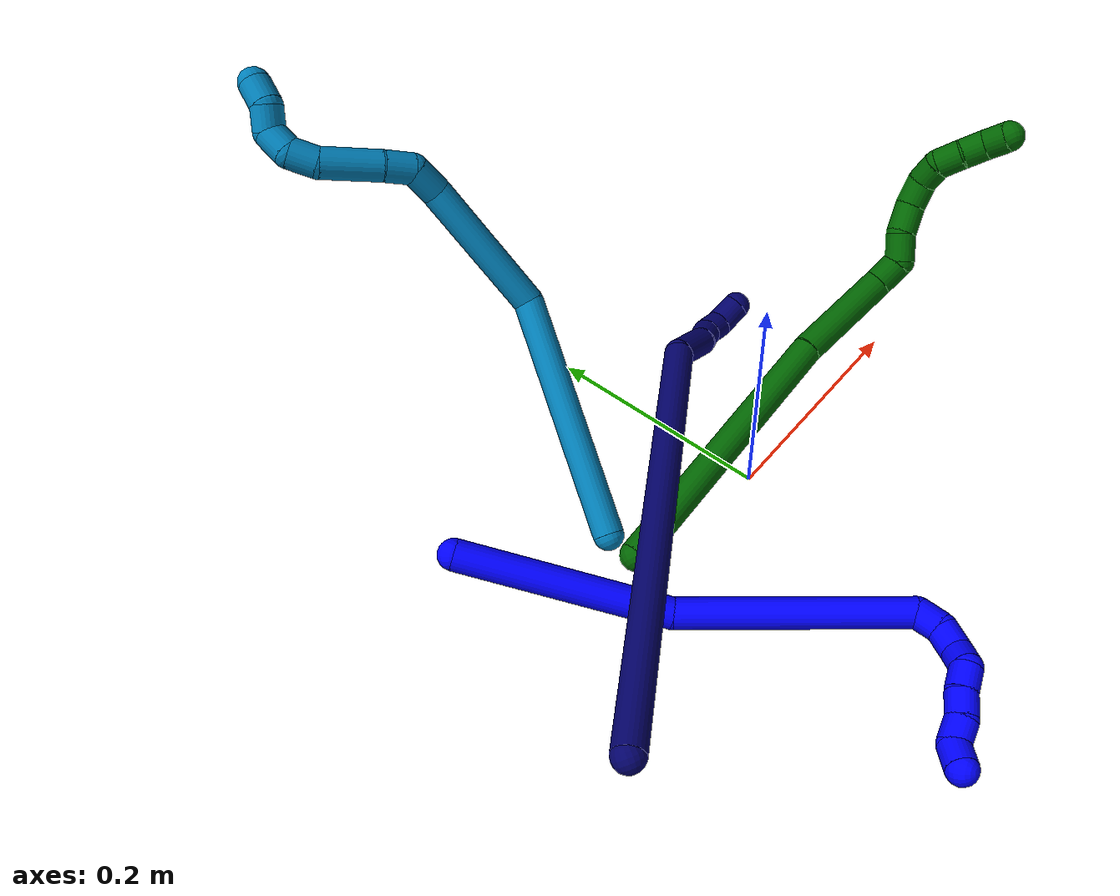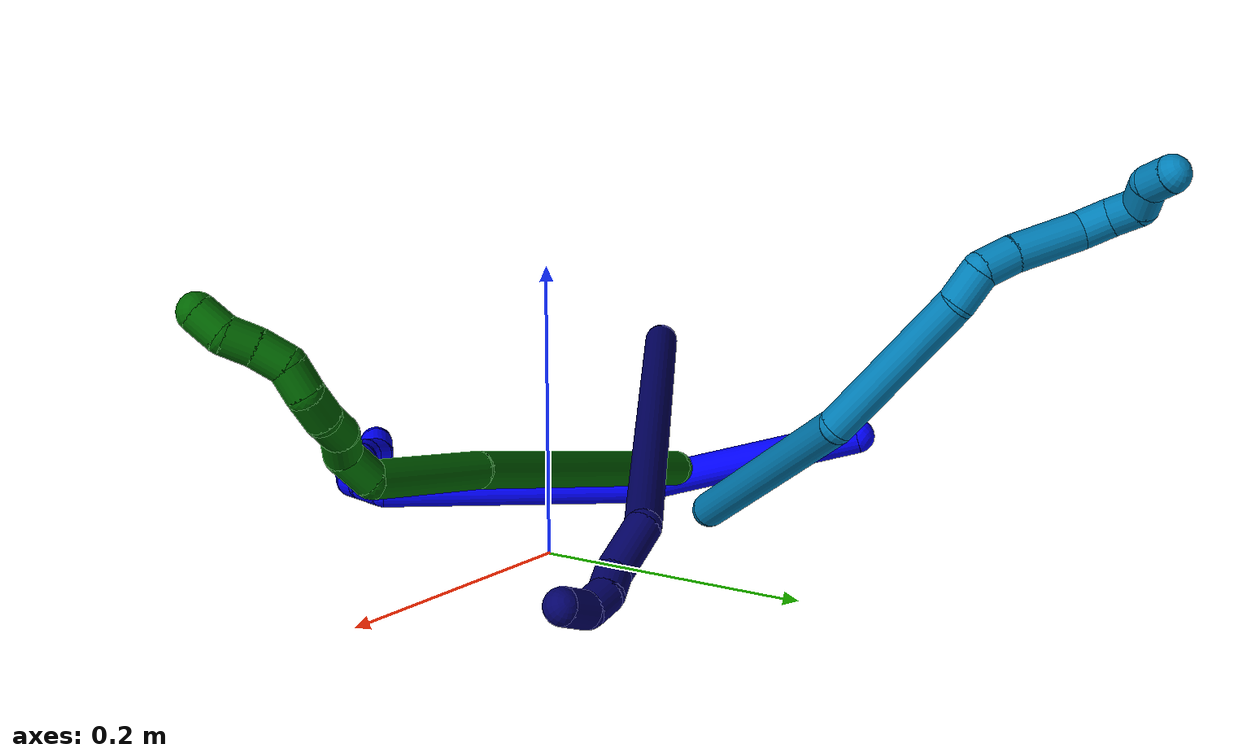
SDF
<sdf version="1.7">
 <world name="default">
  <model name="1">
   <static>0</static>
   <link name="1">
    <collision name="collision-cylinder-e_1_1_4">
     <pose>0.017353 -0.06069 0.058128 0.806958 0.203627 0.087175</pose>
     <geometry><cylinder><radius>0.0125</radius><length>0.171618</length></cylinder></geometry>
     <surface>
      <friction><ode><mu>1.16</mu><mu2>1.16</mu2><slip1>0</slip1><slip2>0</slip2></ode></friction>
      <contact><ode><kp>1e+06</kp><kd>1</kd><max_vel>0</max_vel><min_depth>0.001</min_depth></ode></contact>
     </surface>
    </collision>
    <visual name="visual-cylinder-e_1_1_4">
     <pose>0.017353 -0.06069 0.058128 0.806958 0.203627 0.087175</pose>
     <geometry><cylinder><radius>0.0125</radius><length>0.171618</length></cylinder></geometry>
     <material><ambient>0 0 1 1</ambient></material>
    </visual>
    <collision name="collision-cylinder-e_2_4_5">
     <pose>0.072758 -0.169143 0.18653 0.596951 0.421055 0.131304</pose>
     <geometry><cylinder><radius>0.0125</radius><length>0.186204</length></cylinder></geometry>
     <surface>
      <friction><ode><mu>1.16</mu><mu2>1.16</mu2><slip1>0</slip1><slip2>0</slip2></ode></friction>
      <contact><ode><kp>1e+06</kp><kd>1</kd><max_vel>0</max_vel><min_depth>0.001</min_depth></ode></contact>
     </surface>
    </collision>
    <visual name="visual-cylinder-e_2_4_5">
     <pose>0.072758 -0.169143 0.18653 0.596951 0.421055 0.131304</pose>
     <geometry><cylinder><radius>0.0125</radius><length>0.186204</length></cylinder></geometry>
     <material><ambient>0 0 1 1</ambient></material>
    </visual>
    <collision name="collision-cylinder-e_3_5_6">
     <pose>0.107759 -0.220283 0.266455 0.336563 -0.290124 -0.049627</pose>
     <geometry><cylinder><radius>0.0125</radius><length>0.021338</length></cylinder></geometry>
     <surface>
      <friction><ode><mu>1.16</mu><mu2>1.16</mu2><slip1>0</slip1><slip2>0</slip2></ode></friction>
      <contact><ode><kp>1e+06</kp><kd>1</kd><max_vel>0</max_vel><min_depth>0.001</min_depth></ode></contact>
     </surface>
    </collision>
    <visual name="visual-cylinder-e_3_5_6">
     <pose>0.107759 -0.220283 0.266455 0.336563 -0.290124 -0.049627</pose>
     <geometry><cylinder><radius>0.0125</radius><length>0.021338</length></cylinder></geometry>
     <material><ambient>0 0 1 1</ambient></material>
    </visual>
    <collision name="collision-cylinder-e_4_6_7">
     <pose>0.098113 -0.227095 0.283257 0.447834 -0.69337 -0.164182</pose>
     <geometry><cylinder><radius>0.0125</radius><length>0.020633</length></cylinder></geometry>
     <surface>
      <friction><ode><mu>1.16</mu><mu2>1.16</mu2><slip1>0</slip1><slip2>0</slip2></ode></friction>
      <contact><ode><kp>1e+06</kp><kd>1</kd><max_vel>0</max_vel><min_depth>0.001</min_depth></ode></contact>
     </surface>
    </collision>
    <visual name="visual-cylinder-e_4_6_7">
     <pose>0.098113 -0.227095 0.283257 0.447834 -0.69337 -0.164182</pose>
     <geometry><cylinder><radius>0.0125</radius><length>0.020633</length></cylinder></geometry>
     <material><ambient>0 0 1 1</ambient></material>
    </visual>
    <collision name="collision-cylinder-e_5_7_8">
     <pose>0.085151 -0.227593 0.297574 -0.389116 -0.68819 0.140992</pose>
     <geometry><cylinder><radius>0.0125</radius><length>0.020054</length></cylinder></geometry>
     <surface>
      <friction><ode><mu>1.16</mu><mu2>1.16</mu2><slip1>0</slip1><slip2>0</slip2></ode></friction>
      <contact><ode><kp>1e+06</kp><kd>1</kd><max_vel>0</max_vel><min_depth>0.001</min_depth></ode></contact>
     </surface>
    </collision>
    <visual name="visual-cylinder-e_5_7_8">
     <pose>0.085151 -0.227593 0.297574 -0.389116 -0.68819 0.140992</pose>
     <geometry><cylinder><radius>0.0125</radius><length>0.020054</length></cylinder></geometry>
     <material><ambient>0 0 1 1</ambient></material>
    </visual>
    <collision name="collision-cylinder-e_6_8_9">
     <pose>0.068908 -0.223834 0.306217 -0.506913 -1.40137 0.430198</pose>
     <geometry><cylinder><radius>0.0125</radius><length>0.020034</length></cylinder></geometry>
     <surface>
      <friction><ode><mu>1.16</mu><mu2>1.16</mu2><slip1>0</slip1><slip2>0</slip2></ode></friction>
      <contact><ode><kp>1e+06</kp><kd>1</kd><max_vel>0</max_vel><min_depth>0.001</min_depth></ode></contact>
     </surface>
    </collision>
    <visual name="visual-cylinder-e_6_8_9">
     <pose>0.068908 -0.223834 0.306217 -0.506913 -1.40137 0.430198</pose>
     <geometry><cylinder><radius>0.0125</radius><length>0.020034</length></cylinder></geometry>
     <material><ambient>0 0 1 1</ambient></material>
    </visual>
    <collision name="collision-cylinder-e_7_9_10">
     <pose>0.049524 -0.223449 0.310915 0.134048 -1.24147 -0.095918</pose>
     <geometry><cylinder><radius>0.0125</radius><length>0.020103</length></cylinder></geometry>
     <surface>
      <friction><ode><mu>1.16</mu><mu2>1.16</mu2><slip1>0</slip1><slip2>0</slip2></ode></friction>
      <contact><ode><kp>1e+06</kp><kd>1</kd><max_vel>0</max_vel><min_depth>0.001</min_depth></ode></contact>
     </surface>
    </collision>
    <visual name="visual-cylinder-e_7_9_10">
     <pose>0.049524 -0.223449 0.310915 0.134048 -1.24147 -0.095918</pose>
     <geometry><cylinder><radius>0.0125</radius><length>0.020103</length></cylinder></geometry>
     <material><ambient>0 0 1 1</ambient></material>
    </visual>
    <collision name="collision-cylinder-e_8_10_11">
     <pose>0.030017 -0.223597 0.314273 -1.1265 -1.53912 1.09809</pose>
     <geometry><cylinder><radius>0.0125</radius><length>0.020001</length></cylinder></geometry>
     <surface>
      <friction><ode><mu>1.16</mu><mu2>1.16</mu2><slip1>0</slip1><slip2>0</slip2></ode></friction>
      <contact><ode><kp>1e+06</kp><kd>1</kd><max_vel>0</max_vel><min_depth>0.001</min_depth></ode></contact>
     </surface>
    </collision>
    <visual name="visual-cylinder-e_8_10_11">
     <pose>0.030017 -0.223597 0.314273 -1.1265 -1.53912 1.09809</pose>
     <geometry><cylinder><radius>0.0125</radius><length>0.020001</length></cylinder></geometry>
     <material><ambient>0 0 1 1</ambient></material>
    </visual>
    <collision name="collision-cylinder-e_9_11_2">
     <pose>0.012297 -0.221987 0.320632 -0.209664 -0.881837 0.099224</pose>
     <geometry><cylinder><radius>0.0125</radius><length>0.020015</length></cylinder></geometry>
     <surface>
      <friction><ode><mu>1.16</mu><mu2>1.16</mu2><slip1>0</slip1><slip2>0</slip2></ode></friction>
      <contact><ode><kp>1e+06</kp><kd>1</kd><max_vel>0</max_vel><min_depth>0.001</min_depth></ode></contact>
     </surface>
    </collision>
    <visual name="visual-cylinder-e_9_11_2">
     <pose>0.012297 -0.221987 0.320632 -0.209664 -0.881837 0.099224</pose>
     <geometry><cylinder><radius>0.0125</radius><length>0.020015</length></cylinder></geometry>
     <material><ambient>0 0 1 1</ambient></material>
    </visual>
    <collision name="collision-sphere-2">
     <pose>0.004572 -0.220663 0.326855 0 -0 0</pose>
     <geometry><sphere><radius>0.0125</radius></sphere></geometry>
     <surface>
      <friction><ode><mu>1.16</mu><mu2>1.16</mu2><slip1>0</slip1><slip2>0</slip2></ode></friction>
      <contact><ode><kp>1e+06</kp><kd>1</kd><max_vel>0</max_vel><min_depth>0.001</min_depth></ode></contact>
     </surface>
    </collision>
    <visual name="visual-sphere-2">
     <pose>0.004572 -0.220663 0.326855 0 -0 0</pose>
     <geometry><sphere><radius>0.0125</radius></sphere></geometry>
     <material><ambient>0 0 1 1</ambient></material>
    </visual>
    <collision name="collision-sphere-11">
     <pose>0.020022 -0.223311 0.314409 0 -0 0</pose>
     <geometry><sphere><radius>0.0125</radius></sphere></geometry>
     <surface>
      <friction><ode><mu>1.16</mu><mu2>1.16</mu2><slip1>0</slip1><slip2>0</slip2></ode></friction>
      <contact><ode><kp>1e+06</kp><kd>1</kd><max_vel>0</max_vel><min_depth>0.001</min_depth></ode></contact>
     </surface>
    </collision>
    <visual name="visual-sphere-11">
     <pose>0.020022 -0.223311 0.314409 0 -0 0</pose>
     <geometry><sphere><radius>0.0125</radius></sphere></geometry>
     <material><ambient>0 0 1 1</ambient></material>
    </visual>
    <collision name="collision-sphere-10">
     <pose>0.040012 -0.223883 0.314137 0 -0 0</pose>
     <geometry><sphere><radius>0.0125</radius></sphere></geometry>
     <surface>
      <friction><ode><mu>1.16</mu><mu2>1.16</mu2><slip1>0</slip1><slip2>0</slip2></ode></friction>
      <contact><ode><kp>1e+06</kp><kd>1</kd><max_vel>0</max_vel><min_depth>0.001</min_depth></ode></contact>
     </surface>
    </collision>
    <visual name="visual-sphere-10">
     <pose>0.040012 -0.223883 0.314137 0 -0 0</pose>
     <geometry><sphere><radius>0.0125</radius></sphere></geometry>
     <material><ambient>0 0 1 1</ambient></material>
    </visual>
    <collision name="collision-sphere-9">
     <pose>0.059035 -0.223014 0.307694 0 -0 0</pose>
     <geometry><sphere><radius>0.0125</radius></sphere></geometry>
     <surface>
      <friction><ode><mu>1.16</mu><mu2>1.16</mu2><slip1>0</slip1><slip2>0</slip2></ode></friction>
      <contact><ode><kp>1e+06</kp><kd>1</kd><max_vel>0</max_vel><min_depth>0.001</min_depth></ode></contact>
     </surface>
    </collision>
    <visual name="visual-sphere-9">
     <pose>0.059035 -0.223014 0.307694 0 -0 0</pose>
     <geometry><sphere><radius>0.0125</radius></sphere></geometry>
     <material><ambient>0 0 1 1</ambient></material>
    </visual>
    <collision name="collision-sphere-4">
     <pose>0.034705 -0.121379 0.116255 0 -0 0</pose>
     <geometry><sphere><radius>0.0125</radius></sphere></geometry>
     <surface>
      <friction><ode><mu>1.16</mu><mu2>1.16</mu2><slip1>0</slip1><slip2>0</slip2></ode></friction>
      <contact><ode><kp>1e+06</kp><kd>1</kd><max_vel>0</max_vel><min_depth>0.001</min_depth></ode></contact>
     </surface>
    </collision>
    <visual name="visual-sphere-4">
     <pose>0.034705 -0.121379 0.116255 0 -0 0</pose>
     <geometry><sphere><radius>0.0125</radius></sphere></geometry>
     <material><ambient>0 0 1 1</ambient></material>
    </visual>
    <collision name="collision-sphere-1">
     <geometry><sphere><radius>0.0125</radius></sphere></geometry>
     <surface>
      <friction><ode><mu>1.16</mu><mu2>1.16</mu2><slip1>0</slip1><slip2>0</slip2></ode></friction>
      <contact><ode><kp>1e+06</kp><kd>1</kd><max_vel>0</max_vel><min_depth>0.001</min_depth></ode></contact>
     </surface>
    </collision>
    <visual name="visual-sphere-1">
     <geometry><sphere><radius>0.0125</radius></sphere></geometry>
     <material><ambient>0 0 1 1</ambient></material>
    </visual>
    <collision name="collision-sphere-8">
     <pose>0.078782 -0.224654 0.30474 0 -0 0</pose>
     <geometry><sphere><radius>0.0125</radius></sphere></geometry>
     <surface>
      <friction><ode><mu>1.16</mu><mu2>1.16</mu2><slip1>0</slip1><slip2>0</slip2></ode></friction>
      <contact><ode><kp>1e+06</kp><kd>1</kd><max_vel>0</max_vel><min_depth>0.001</min_depth></ode></contact>
     </surface>
    </collision>
    <visual name="visual-sphere-8">
     <pose>0.078782 -0.224654 0.30474 0 -0 0</pose>
     <geometry><sphere><radius>0.0125</radius></sphere></geometry>
     <material><ambient>0 0 1 1</ambient></material>
    </visual>
    <collision name="collision-sphere-5">
     <pose>0.110811 -0.216907 0.256805 0 -0 0</pose>
     <geometry><sphere><radius>0.0125</radius></sphere></geometry>
     <surface>
      <friction><ode><mu>1.16</mu><mu2>1.16</mu2><slip1>0</slip1><slip2>0</slip2></ode></friction>
      <contact><ode><kp>1e+06</kp><kd>1</kd><max_vel>0</max_vel><min_depth>0.001</min_depth></ode></contact>
     </surface>
    </collision>
    <visual name="visual-sphere-5">
     <pose>0.110811 -0.216907 0.256805 0 -0 0</pose>
     <geometry><sphere><radius>0.0125</radius></sphere></geometry>
     <material><ambient>0 0 1 1</ambient></material>
    </visual>
    <collision name="collision-sphere-6">
     <pose>0.104707 -0.223659 0.276104 0 -0 0</pose>
     <geometry><sphere><radius>0.0125</radius></sphere></geometry>
     <surface>
      <friction><ode><mu>1.16</mu><mu2>1.16</mu2><slip1>0</slip1><slip2>0</slip2></ode></friction>
      <contact><ode><kp>1e+06</kp><kd>1</kd><max_vel>0</max_vel><min_depth>0.001</min_depth></ode></contact>
     </surface>
    </collision>
    <visual name="visual-sphere-6">
     <pose>0.104707 -0.223659 0.276104 0 -0 0</pose>
     <geometry><sphere><radius>0.0125</radius></sphere></geometry>
     <material><ambient>0 0 1 1</ambient></material>
    </visual>
    <collision name="collision-sphere-7">
     <pose>0.091519 -0.230531 0.290409 0 -0 0</pose>
     <geometry><sphere><radius>0.0125</radius></sphere></geometry>
     <surface>
      <friction><ode><mu>1.16</mu><mu2>1.16</mu2><slip1>0</slip1><slip2>0</slip2></ode></friction>
      <contact><ode><kp>1e+06</kp><kd>1</kd><max_vel>0</max_vel><min_depth>0.001</min_depth></ode></contact>
     </surface>
    </collision>
    <visual name="visual-sphere-7">
     <pose>0.091519 -0.230531 0.290409 0 -0 0</pose>
     <geometry><sphere><radius>0.0125</radius></sphere></geometry>
     <material><ambient>0 0 1 1</ambient></material>
    </visual>
    <inertial>
     <pose>0.05156 -0.147505 0.174589 0 -0 0</pose>
     <mass>0.5</mass>
     <inertia>
      <ixx>0.001018</ixx>
      <ixy>0</ixy>
      <ixz>0</ixz>
      <iyy>0.000858</iyy>
      <iyz>0</iyz>
      <izz>0.000307</izz>
     </inertia>
    </inertial>
   </link>
   <pose>-0.228629 0.113033 0.053035 1.06771 -0.219204 0.240309</pose>
  </model>
  <model name="6">
   <static>0</static>
   <link name="6">
    <collision name="collision-cylinder-e_1_1_4">
     <pose>0.085675 -0.048022 0.057527 0.695581 0.85216 0.326168</pose>
     <geometry><cylinder><radius>0.0125</radius><length>0.227646</length></cylinder></geometry>
     <surface>
      <friction><ode><mu>1.16</mu><mu2>1.16</mu2><slip1>0</slip1><slip2>0</slip2></ode></friction>
      <contact><ode><kp>1e+06</kp><kd>1</kd><max_vel>0</max_vel><min_depth>0.001</min_depth></ode></contact>
     </surface>
    </collision>
    <visual name="visual-cylinder-e_1_1_4">
     <pose>0.085675 -0.048022 0.057527 0.695581 0.85216 0.326168</pose>
     <geometry><cylinder><radius>0.0125</radius><length>0.227646</length></cylinder></geometry>
     <material><ambient>0 0.392157 0.003922 1</ambient></material>
    </visual>
    <collision name="collision-cylinder-e_2_4_5">
     <pose>0.20984 -0.115004 0.134563 0.771143 0.955526 0.414285</pose>
     <geometry><cylinder><radius>0.0125</radius><length>0.094268</length></cylinder></geometry>
     <surface>
      <friction><ode><mu>1.16</mu><mu2>1.16</mu2><slip1>0</slip1><slip2>0</slip2></ode></friction>
      <contact><ode><kp>1e+06</kp><kd>1</kd><max_vel>0</max_vel><min_depth>0.001</min_depth></ode></contact>
     </surface>
    </collision>
    <visual name="visual-cylinder-e_2_4_5">
     <pose>0.20984 -0.115004 0.134563 0.771143 0.955526 0.414285</pose>
     <geometry><cylinder><radius>0.0125</radius><length>0.094268</length></cylinder></geometry>
     <material><ambient>0 0.392157 0.003922 1</ambient></material>
    </visual>
    <collision name="collision-cylinder-e_3_5_6">
     <pose>0.25258 -0.145537 0.156865 1.33399 0.342874 0.270976</pose>
     <geometry><cylinder><radius>0.0125</radius><length>0.025282</length></cylinder></geometry>
     <surface>
      <friction><ode><mu>1.16</mu><mu2>1.16</mu2><slip1>0</slip1><slip2>0</slip2></ode></friction>
      <contact><ode><kp>1e+06</kp><kd>1</kd><max_vel>0</max_vel><min_depth>0.001</min_depth></ode></contact>
     </surface>
    </collision>
    <visual name="visual-cylinder-e_3_5_6">
     <pose>0.25258 -0.145537 0.156865 1.33399 0.342874 0.270976</pose>
     <geometry><cylinder><radius>0.0125</radius><length>0.025282</length></cylinder></geometry>
     <material><ambient>0 0.392157 0.003922 1</ambient></material>
    </visual>
    <collision name="collision-cylinder-e_4_6_7">
     <pose>0.257244 -0.163887 0.169264 0.614486 0.035163 0.011158</pose>
     <geometry><cylinder><radius>0.0125</radius><length>0.023527</length></cylinder></geometry>
     <surface>
      <friction><ode><mu>1.16</mu><mu2>1.16</mu2><slip1>0</slip1><slip2>0</slip2></ode></friction>
      <contact><ode><kp>1e+06</kp><kd>1</kd><max_vel>0</max_vel><min_depth>0.001</min_depth></ode></contact>
     </surface>
    </collision>
    <visual name="visual-cylinder-e_4_6_7">
     <pose>0.257244 -0.163887 0.169264 0.614486 0.035163 0.011158</pose>
     <geometry><cylinder><radius>0.0125</radius><length>0.023527</length></cylinder></geometry>
     <material><ambient>0 0.392157 0.003922 1</ambient></material>
    </visual>
    <collision name="collision-cylinder-e_5_7_8">
     <pose>0.262224 -0.177992 0.188036 0.674289 0.371109 0.131408</pose>
     <geometry><cylinder><radius>0.0125</radius><length>0.025184</length></cylinder></geometry>
     <surface>
      <friction><ode><mu>1.16</mu><mu2>1.16</mu2><slip1>0</slip1><slip2>0</slip2></ode></friction>
      <contact><ode><kp>1e+06</kp><kd>1</kd><max_vel>0</max_vel><min_depth>0.001</min_depth></ode></contact>
     </surface>
    </collision>
    <visual name="visual-cylinder-e_5_7_8">
     <pose>0.262224 -0.177992 0.188036 0.674289 0.371109 0.131408</pose>
     <geometry><cylinder><radius>0.0125</radius><length>0.025184</length></cylinder></geometry>
     <material><ambient>0 0.392157 0.003922 1</ambient></material>
    </visual>
    <collision name="collision-cylinder-e_6_8_9">
     <pose>0.269287 -0.194479 0.203176 0.992995 0.224437 0.121954</pose>
     <geometry><cylinder><radius>0.0125</radius><length>0.022435</length></cylinder></geometry>
     <surface>
      <friction><ode><mu>1.16</mu><mu2>1.16</mu2><slip1>0</slip1><slip2>0</slip2></ode></friction>
      <contact><ode><kp>1e+06</kp><kd>1</kd><max_vel>0</max_vel><min_depth>0.001</min_depth></ode></contact>
     </surface>
    </collision>
    <visual name="visual-cylinder-e_6_8_9">
     <pose>0.269287 -0.194479 0.203176 0.992995 0.224437 0.121954</pose>
     <geometry><cylinder><radius>0.0125</radius><length>0.022435</length></cylinder></geometry>
     <material><ambient>0 0.392157 0.003922 1</ambient></material>
    </visual>
    <collision name="collision-cylinder-e_7_9_10">
     <pose>0.272002 -0.213709 0.210212 1.4656 0.021598 0.019438</pose>
     <geometry><cylinder><radius>0.0125</radius><length>0.020254</length></cylinder></geometry>
     <surface>
      <friction><ode><mu>1.16</mu><mu2>1.16</mu2><slip1>0</slip1><slip2>0</slip2></ode></friction>
      <contact><ode><kp>1e+06</kp><kd>1</kd><max_vel>0</max_vel><min_depth>0.001</min_depth></ode></contact>
     </surface>
    </collision>
    <visual name="visual-cylinder-e_7_9_10">
     <pose>0.272002 -0.213709 0.210212 1.4656 0.021598 0.019438</pose>
     <geometry><cylinder><radius>0.0125</radius><length>0.020254</length></cylinder></geometry>
     <material><ambient>0 0.392157 0.003922 1</ambient></material>
    </visual>
    <collision name="collision-cylinder-e_8_10_11">
     <pose>0.276778 -0.233069 0.209414 1.76847 0.448296 0.542619</pose>
     <geometry><cylinder><radius>0.0125</radius><length>0.021031</length></cylinder></geometry>
     <surface>
      <friction><ode><mu>1.16</mu><mu2>1.16</mu2><slip1>0</slip1><slip2>0</slip2></ode></friction>
      <contact><ode><kp>1e+06</kp><kd>1</kd><max_vel>0</max_vel><min_depth>0.001</min_depth></ode></contact>
     </surface>
    </collision>
    <visual name="visual-cylinder-e_8_10_11">
     <pose>0.276778 -0.233069 0.209414 1.76847 0.448296 0.542619</pose>
     <geometry><cylinder><radius>0.0125</radius><length>0.021031</length></cylinder></geometry>
     <material><ambient>0 0.392157 0.003922 1</ambient></material>
    </visual>
    <collision name="collision-cylinder-e_9_11_12">
     <pose>0.287134 -0.250464 0.206275 1.72721 0.615238 0.711808</pose>
     <geometry><cylinder><radius>0.0125</radius><length>0.020091</length></cylinder></geometry>
     <surface>
      <friction><ode><mu>1.16</mu><mu2>1.16</mu2><slip1>0</slip1><slip2>0</slip2></ode></friction>
      <contact><ode><kp>1e+06</kp><kd>1</kd><max_vel>0</max_vel><min_depth>0.001</min_depth></ode></contact>
     </surface>
    </collision>
    <visual name="visual-cylinder-e_9_11_12">
     <pose>0.287134 -0.250464 0.206275 1.72721 0.615238 0.711808</pose>
     <geometry><cylinder><radius>0.0125</radius><length>0.020091</length></cylinder></geometry>
     <material><ambient>0 0.392157 0.003922 1</ambient></material>
    </visual>
    <collision name="collision-cylinder-e_10_12_2">
     <pose>0.295047 -0.267977 0.20186 1.89269 0.210146 0.290621</pose>
     <geometry><cylinder><radius>0.0125</radius><length>0.020283</length></cylinder></geometry>
     <surface>
      <friction><ode><mu>1.16</mu><mu2>1.16</mu2><slip1>0</slip1><slip2>0</slip2></ode></friction>
      <contact><ode><kp>1e+06</kp><kd>1</kd><max_vel>0</max_vel><min_depth>0.001</min_depth></ode></contact>
     </surface>
    </collision>
    <visual name="visual-cylinder-e_10_12_2">
     <pose>0.295047 -0.267977 0.20186 1.89269 0.210146 0.290621</pose>
     <geometry><cylinder><radius>0.0125</radius><length>0.020283</length></cylinder></geometry>
     <material><ambient>0 0.392157 0.003922 1</ambient></material>
    </visual>
    <collision name="collision-sphere-2">
     <pose>0.297163 -0.277386 0.198722 0 -0 0</pose>
     <geometry><sphere><radius>0.0125</radius></sphere></geometry>
     <surface>
      <friction><ode><mu>1.16</mu><mu2>1.16</mu2><slip1>0</slip1><slip2>0</slip2></ode></friction>
      <contact><ode><kp>1e+06</kp><kd>1</kd><max_vel>0</max_vel><min_depth>0.001</min_depth></ode></contact>
     </surface>
    </collision>
    <visual name="visual-sphere-2">
     <pose>0.297163 -0.277386 0.198722 0 -0 0</pose>
     <geometry><sphere><radius>0.0125</radius></sphere></geometry>
     <material><ambient>0 0.392157 0.003922 1</ambient></material>
    </visual>
    <collision name="collision-sphere-12">
     <pose>0.292932 -0.258568 0.204997 0 -0 0</pose>
     <geometry><sphere><radius>0.0125</radius></sphere></geometry>
     <surface>
      <friction><ode><mu>1.16</mu><mu2>1.16</mu2><slip1>0</slip1><slip2>0</slip2></ode></friction>
      <contact><ode><kp>1e+06</kp><kd>1</kd><max_vel>0</max_vel><min_depth>0.001</min_depth></ode></contact>
     </surface>
    </collision>
    <visual name="visual-sphere-12">
     <pose>0.292932 -0.258568 0.204997 0 -0 0</pose>
     <geometry><sphere><radius>0.0125</radius></sphere></geometry>
     <material><ambient>0 0.392157 0.003922 1</ambient></material>
    </visual>
    <collision name="collision-sphere-11">
     <pose>0.281336 -0.242361 0.207553 0 -0 0</pose>
     <geometry><sphere><radius>0.0125</radius></sphere></geometry>
     <surface>
      <friction><ode><mu>1.16</mu><mu2>1.16</mu2><slip1>0</slip1><slip2>0</slip2></ode></friction>
      <contact><ode><kp>1e+06</kp><kd>1</kd><max_vel>0</max_vel><min_depth>0.001</min_depth></ode></contact>
     </surface>
    </collision>
    <visual name="visual-sphere-11">
     <pose>0.281336 -0.242361 0.207553 0 -0 0</pose>
     <geometry><sphere><radius>0.0125</radius></sphere></geometry>
     <material><ambient>0 0.392157 0.003922 1</ambient></material>
    </visual>
    <collision name="collision-sphere-10">
     <pose>0.272221 -0.223778 0.211275 0 -0 0</pose>
     <geometry><sphere><radius>0.0125</radius></sphere></geometry>
     <surface>
      <friction><ode><mu>1.16</mu><mu2>1.16</mu2><slip1>0</slip1><slip2>0</slip2></ode></friction>
      <contact><ode><kp>1e+06</kp><kd>1</kd><max_vel>0</max_vel><min_depth>0.001</min_depth></ode></contact>
     </surface>
    </collision>
    <visual name="visual-sphere-10">
     <pose>0.272221 -0.223778 0.211275 0 -0 0</pose>
     <geometry><sphere><radius>0.0125</radius></sphere></geometry>
     <material><ambient>0 0.392157 0.003922 1</ambient></material>
    </visual>
    <collision name="collision-sphere-9">
     <pose>0.271783 -0.20364 0.209149 0 -0 0</pose>
     <geometry><sphere><radius>0.0125</radius></sphere></geometry>
     <surface>
      <friction><ode><mu>1.16</mu><mu2>1.16</mu2><slip1>0</slip1><slip2>0</slip2></ode></friction>
      <contact><ode><kp>1e+06</kp><kd>1</kd><max_vel>0</max_vel><min_depth>0.001</min_depth></ode></contact>
     </surface>
    </collision>
    <visual name="visual-sphere-9">
     <pose>0.271783 -0.20364 0.209149 0 -0 0</pose>
     <geometry><sphere><radius>0.0125</radius></sphere></geometry>
     <material><ambient>0 0.392157 0.003922 1</ambient></material>
    </visual>
    <collision name="collision-sphere-4">
     <pose>0.17135 -0.096043 0.115054 0 -0 0</pose>
     <geometry><sphere><radius>0.0125</radius></sphere></geometry>
     <surface>
      <friction><ode><mu>1.16</mu><mu2>1.16</mu2><slip1>0</slip1><slip2>0</slip2></ode></friction>
      <contact><ode><kp>1e+06</kp><kd>1</kd><max_vel>0</max_vel><min_depth>0.001</min_depth></ode></contact>
     </surface>
    </collision>
    <visual name="visual-sphere-4">
     <pose>0.17135 -0.096043 0.115054 0 -0 0</pose>
     <geometry><sphere><radius>0.0125</radius></sphere></geometry>
     <material><ambient>0 0.392157 0.003922 1</ambient></material>
    </visual>
    <collision name="collision-sphere-1">
     <geometry><sphere><radius>0.0125</radius></sphere></geometry>
     <surface>
      <friction><ode><mu>1.16</mu><mu2>1.16</mu2><slip1>0</slip1><slip2>0</slip2></ode></friction>
      <contact><ode><kp>1e+06</kp><kd>1</kd><max_vel>0</max_vel><min_depth>0.001</min_depth></ode></contact>
     </surface>
    </collision>
    <visual name="visual-sphere-1">
     <geometry><sphere><radius>0.0125</radius></sphere></geometry>
     <material><ambient>0 0.392157 0.003922 1</ambient></material>
    </visual>
    <collision name="collision-sphere-8">
     <pose>0.26679 -0.185319 0.197203 0 -0 0</pose>
     <geometry><sphere><radius>0.0125</radius></sphere></geometry>
     <surface>
      <friction><ode><mu>1.16</mu><mu2>1.16</mu2><slip1>0</slip1><slip2>0</slip2></ode></friction>
      <contact><ode><kp>1e+06</kp><kd>1</kd><max_vel>0</max_vel><min_depth>0.001</min_depth></ode></contact>
     </surface>
    </collision>
    <visual name="visual-sphere-8">
     <pose>0.26679 -0.185319 0.197203 0 -0 0</pose>
     <geometry><sphere><radius>0.0125</radius></sphere></geometry>
     <material><ambient>0 0.392157 0.003922 1</ambient></material>
    </visual>
    <collision name="collision-sphere-5">
     <pose>0.24833 -0.133964 0.154072 0 -0 0</pose>
     <geometry><sphere><radius>0.0125</radius></sphere></geometry>
     <surface>
      <friction><ode><mu>1.16</mu><mu2>1.16</mu2><slip1>0</slip1><slip2>0</slip2></ode></friction>
      <contact><ode><kp>1e+06</kp><kd>1</kd><max_vel>0</max_vel><min_depth>0.001</min_depth></ode></contact>
     </surface>
    </collision>
    <visual name="visual-sphere-5">
     <pose>0.24833 -0.133964 0.154072 0 -0 0</pose>
     <geometry><sphere><radius>0.0125</radius></sphere></geometry>
     <material><ambient>0 0.392157 0.003922 1</ambient></material>
    </visual>
    <collision name="collision-sphere-6">
     <pose>0.25683 -0.15711 0.159658 0 -0 0</pose>
     <geometry><sphere><radius>0.0125</radius></sphere></geometry>
     <surface>
      <friction><ode><mu>1.16</mu><mu2>1.16</mu2><slip1>0</slip1><slip2>0</slip2></ode></friction>
      <contact><ode><kp>1e+06</kp><kd>1</kd><max_vel>0</max_vel><min_depth>0.001</min_depth></ode></contact>
     </surface>
    </collision>
    <visual name="visual-sphere-6">
     <pose>0.25683 -0.15711 0.159658 0 -0 0</pose>
     <geometry><sphere><radius>0.0125</radius></sphere></geometry>
     <material><ambient>0 0.392157 0.003922 1</ambient></material>
    </visual>
    <collision name="collision-sphere-7">
     <pose>0.257657 -0.170665 0.178869 0 -0 0</pose>
     <geometry><sphere><radius>0.0125</radius></sphere></geometry>
     <surface>
      <friction><ode><mu>1.16</mu><mu2>1.16</mu2><slip1>0</slip1><slip2>0</slip2></ode></friction>
      <contact><ode><kp>1e+06</kp><kd>1</kd><max_vel>0</max_vel><min_depth>0.001</min_depth></ode></contact>
     </surface>
    </collision>
    <visual name="visual-sphere-7">
     <pose>0.257657 -0.170665 0.178869 0 -0 0</pose>
     <geometry><sphere><radius>0.0125</radius></sphere></geometry>
     <material><ambient>0 0.392157 0.003922 1</ambient></material>
    </visual>
    <inertial>
     <pose>0.174902 -0.115703 0.119846 0 -0 0</pose>
     <mass>0.5</mass>
     <inertia>
      <ixx>0.000923</ixx>
      <ixy>0</ixy>
      <ixz>0</ixz>
      <iyy>0.001153</iyy>
      <iyz>0</iyz>
      <izz>-0.000335</izz>
     </inertia>
    </inertial>
   </link>
   <pose>-0.134977 0.013657 0.034349 -1.23311 0.433486 -0.367316</pose>
  </model>
  <model name="7">
   <static>0</static>
   <link name="7">
    <collision name="collision-cylinder-e_1_1_4">
     <pose>0.102931 0.101514 0.130884 -0.659684 0.556026 -0.194797</pose>
     <geometry><cylinder><radius>0.0125</radius><length>0.390029</length></cylinder></geometry>
     <surface>
      <friction><ode><mu>1.16</mu><mu2>1.16</mu2><slip1>0</slip1><slip2>0</slip2></ode></friction>
      <contact><ode><kp>1e+06</kp><kd>1</kd><max_vel>0</max_vel><min_depth>0.001</min_depth></ode></contact>
     </surface>
    </collision>
    <visual name="visual-cylinder-e_1_1_4">
     <pose>0.102931 0.101514 0.130884 -0.659684 0.556026 -0.194797</pose>
     <geometry><cylinder><radius>0.0125</radius><length>0.390029</length></cylinder></geometry>
     <material><ambient>0.003922 0 0.403922 1</ambient></material>
    </visual>
    <collision name="collision-cylinder-e_2_4_5">
     <pose>0.223241 0.217175 0.265797 -1.29338 0.868337 -0.673477</pose>
     <geometry><cylinder><radius>0.0125</radius><length>0.045536</length></cylinder></geometry>
     <surface>
      <friction><ode><mu>1.16</mu><mu2>1.16</mu2><slip1>0</slip1><slip2>0</slip2></ode></friction>
      <contact><ode><kp>1e+06</kp><kd>1</kd><max_vel>0</max_vel><min_depth>0.001</min_depth></ode></contact>
     </surface>
    </collision>
    <visual name="visual-cylinder-e_2_4_5">
     <pose>0.223241 0.217175 0.265797 -1.29338 0.868337 -0.673477</pose>
     <geometry><cylinder><radius>0.0125</radius><length>0.045536</length></cylinder></geometry>
     <material><ambient>0.003922 0 0.403922 1</ambient></material>
    </visual>
    <collision name="collision-cylinder-e_3_5_6">
     <pose>0.247048 0.23795 0.273895 -1.02013 0.690887 -0.397348</pose>
     <geometry><cylinder><radius>0.0125</radius><length>0.02018</length></cylinder></geometry>
     <surface>
      <friction><ode><mu>1.16</mu><mu2>1.16</mu2><slip1>0</slip1><slip2>0</slip2></ode></friction>
      <contact><ode><kp>1e+06</kp><kd>1</kd><max_vel>0</max_vel><min_depth>0.001</min_depth></ode></contact>
     </surface>
    </collision>
    <visual name="visual-cylinder-e_3_5_6">
     <pose>0.247048 0.23795 0.273895 -1.02013 0.690887 -0.397348</pose>
     <geometry><cylinder><radius>0.0125</radius><length>0.02018</length></cylinder></geometry>
     <material><ambient>0.003922 0 0.403922 1</ambient></material>
    </visual>
    <collision name="collision-cylinder-e_4_6_7">
     <pose>0.262609 0.248826 0.28071 -0.997091 1.06485 -0.620781</pose>
     <geometry><cylinder><radius>0.0125</radius><length>0.020879</length></cylinder></geometry>
     <surface>
      <friction><ode><mu>1.16</mu><mu2>1.16</mu2><slip1>0</slip1><slip2>0</slip2></ode></friction>
      <contact><ode><kp>1e+06</kp><kd>1</kd><max_vel>0</max_vel><min_depth>0.001</min_depth></ode></contact>
     </surface>
    </collision>
    <visual name="visual-cylinder-e_4_6_7">
     <pose>0.262609 0.248826 0.28071 -0.997091 1.06485 -0.620781</pose>
     <geometry><cylinder><radius>0.0125</radius><length>0.020879</length></cylinder></geometry>
     <material><ambient>0.003922 0 0.403922 1</ambient></material>
    </visual>
    <collision name="collision-cylinder-e_5_7_2">
     <pose>0.282138 0.251246 0.288472 0.349604 1.0964 0.21485</pose>
     <geometry><cylinder><radius>0.0125</radius><length>0.023376</length></cylinder></geometry>
     <surface>
      <friction><ode><mu>1.16</mu><mu2>1.16</mu2><slip1>0</slip1><slip2>0</slip2></ode></friction>
      <contact><ode><kp>1e+06</kp><kd>1</kd><max_vel>0</max_vel><min_depth>0.001</min_depth></ode></contact>
     </surface>
    </collision>
    <visual name="visual-cylinder-e_5_7_2">
     <pose>0.282138 0.251246 0.288472 0.349604 1.0964 0.21485</pose>
     <geometry><cylinder><radius>0.0125</radius><length>0.023376</length></cylinder></geometry>
     <material><ambient>0.003922 0 0.403922 1</ambient></material>
    </visual>
    <collision name="collision-sphere-2">
     <pose>0.292536 0.249417 0.293488 0 -0 0</pose>
     <geometry><sphere><radius>0.0125</radius></sphere></geometry>
     <surface>
      <friction><ode><mu>1.16</mu><mu2>1.16</mu2><slip1>0</slip1><slip2>0</slip2></ode></friction>
      <contact><ode><kp>1e+06</kp><kd>1</kd><max_vel>0</max_vel><min_depth>0.001</min_depth></ode></contact>
     </surface>
    </collision>
    <visual name="visual-sphere-2">
     <pose>0.292536 0.249417 0.293488 0 -0 0</pose>
     <geometry><sphere><radius>0.0125</radius></sphere></geometry>
     <material><ambient>0.003922 0 0.403922 1</ambient></material>
    </visual>
    <collision name="collision-sphere-7">
     <pose>0.271741 0.253075 0.283456 0 -0 0</pose>
     <geometry><sphere><radius>0.0125</radius></sphere></geometry>
     <surface>
      <friction><ode><mu>1.16</mu><mu2>1.16</mu2><slip1>0</slip1><slip2>0</slip2></ode></friction>
      <contact><ode><kp>1e+06</kp><kd>1</kd><max_vel>0</max_vel><min_depth>0.001</min_depth></ode></contact>
     </surface>
    </collision>
    <visual name="visual-sphere-7">
     <pose>0.271741 0.253075 0.283456 0 -0 0</pose>
     <geometry><sphere><radius>0.0125</radius></sphere></geometry>
     <material><ambient>0.003922 0 0.403922 1</ambient></material>
    </visual>
    <collision name="collision-sphere-6">
     <pose>0.253477 0.244576 0.277964 0 -0 0</pose>
     <geometry><sphere><radius>0.0125</radius></sphere></geometry>
     <surface>
      <friction><ode><mu>1.16</mu><mu2>1.16</mu2><slip1>0</slip1><slip2>0</slip2></ode></friction>
      <contact><ode><kp>1e+06</kp><kd>1</kd><max_vel>0</max_vel><min_depth>0.001</min_depth></ode></contact>
     </surface>
    </collision>
    <visual name="visual-sphere-6">
     <pose>0.253477 0.244576 0.277964 0 -0 0</pose>
     <geometry><sphere><radius>0.0125</radius></sphere></geometry>
     <material><ambient>0.003922 0 0.403922 1</ambient></material>
    </visual>
    <collision name="collision-sphere-5">
     <pose>0.240618 0.231323 0.269826 0 -0 0</pose>
     <geometry><sphere><radius>0.0125</radius></sphere></geometry>
     <surface>
      <friction><ode><mu>1.16</mu><mu2>1.16</mu2><slip1>0</slip1><slip2>0</slip2></ode></friction>
      <contact><ode><kp>1e+06</kp><kd>1</kd><max_vel>0</max_vel><min_depth>0.001</min_depth></ode></contact>
     </surface>
    </collision>
    <visual name="visual-sphere-5">
     <pose>0.240618 0.231323 0.269826 0 -0 0</pose>
     <geometry><sphere><radius>0.0125</radius></sphere></geometry>
     <material><ambient>0.003922 0 0.403922 1</ambient></material>
    </visual>
    <collision name="collision-sphere-1">
     <geometry><sphere><radius>0.0125</radius></sphere></geometry>
     <surface>
      <friction><ode><mu>1.16</mu><mu2>1.16</mu2><slip1>0</slip1><slip2>0</slip2></ode></friction>
      <contact><ode><kp>1e+06</kp><kd>1</kd><max_vel>0</max_vel><min_depth>0.001</min_depth></ode></contact>
     </surface>
    </collision>
    <visual name="visual-sphere-1">
     <geometry><sphere><radius>0.0125</radius></sphere></geometry>
     <material><ambient>0.003922 0 0.403922 1</ambient></material>
    </visual>
    <collision name="collision-sphere-4">
     <pose>0.205863 0.203027 0.261768 0 -0 0</pose>
     <geometry><sphere><radius>0.0125</radius></sphere></geometry>
     <surface>
      <friction><ode><mu>1.16</mu><mu2>1.16</mu2><slip1>0</slip1><slip2>0</slip2></ode></friction>
      <contact><ode><kp>1e+06</kp><kd>1</kd><max_vel>0</max_vel><min_depth>0.001</min_depth></ode></contact>
     </surface>
    </collision>
    <visual name="visual-sphere-4">
     <pose>0.205863 0.203027 0.261768 0 -0 0</pose>
     <geometry><sphere><radius>0.0125</radius></sphere></geometry>
     <material><ambient>0.003922 0 0.403922 1</ambient></material>
    </visual>
    <inertial>
     <pose>0.134751 0.130706 0.162567 0 -0 0</pose>
     <mass>0.5</mass>
     <inertia>
      <ixx>0.003343</ixx>
      <ixy>0</ixy>
      <ixz>0</ixz>
      <iyy>0.003366</iyy>
      <iyz>0</iyz>
      <izz>-0.005195</izz>
     </inertia>
    </inertial>
   </link>
   <pose>-0.282931 -0.100083 0.093747 -1.03804 0.028999 -0.445053</pose>
  </model>
  <model name="9">
   <static>0</static>
   <link name="9">
    <collision name="collision-cylinder-e_1_1_4">
     <pose>0.000203 -0.014508 0.100445 0.143443 0.001997 0.000143</pose>
     <geometry><cylinder><radius>0.0125</radius><length>0.202975</length></cylinder></geometry>
     <surface>
      <friction><ode><mu>1.16</mu><mu2>1.16</mu2><slip1>0</slip1><slip2>0</slip2></ode></friction>
      <contact><ode><kp>1e+06</kp><kd>1</kd><max_vel>0</max_vel><min_depth>0.001</min_depth></ode></contact>
     </surface>
    </collision>
    <visual name="visual-cylinder-e_1_1_4">
     <pose>0.000203 -0.014508 0.100445 0.143443 0.001997 0.000143</pose>
     <geometry><cylinder><radius>0.0125</radius><length>0.202975</length></cylinder></geometry>
     <material><ambient>0 0.490196 0.709804 1</ambient></material>
    </visual>
    <collision name="collision-cylinder-e_2_4_5">
     <pose>-0.002453 -0.002382 0.252245 -0.478425 -0.049373 0.012044</pose>
     <geometry><cylinder><radius>0.0125</radius><length>0.115843</length></cylinder></geometry>
     <surface>
      <friction><ode><mu>1.16</mu><mu2>1.16</mu2><slip1>0</slip1><slip2>0</slip2></ode></friction>
      <contact><ode><kp>1e+06</kp><kd>1</kd><max_vel>0</max_vel><min_depth>0.001</min_depth></ode></contact>
     </surface>
    </collision>
    <visual name="visual-cylinder-e_2_4_5">
     <pose>-0.002453 -0.002382 0.252245 -0.478425 -0.049373 0.012044</pose>
     <geometry><cylinder><radius>0.0125</radius><length>0.115843</length></cylinder></geometry>
     <material><ambient>0 0.490196 0.709804 1</ambient></material>
    </visual>
    <collision name="collision-cylinder-e_3_5_6">
     <pose>-0.0074 0.032799 0.313132 -0.731036 -0.161704 0.062002</pose>
     <geometry><cylinder><radius>0.0125</radius><length>0.025943</length></cylinder></geometry>
     <surface>
      <friction><ode><mu>1.16</mu><mu2>1.16</mu2><slip1>0</slip1><slip2>0</slip2></ode></friction>
      <contact><ode><kp>1e+06</kp><kd>1</kd><max_vel>0</max_vel><min_depth>0.001</min_depth></ode></contact>
     </surface>
    </collision>
    <visual name="visual-cylinder-e_3_5_6">
     <pose>-0.0074 0.032799 0.313132 -0.731036 -0.161704 0.062002</pose>
     <geometry><cylinder><radius>0.0125</radius><length>0.025943</length></cylinder></geometry>
     <material><ambient>0 0.490196 0.709804 1</ambient></material>
    </visual>
    <collision name="collision-cylinder-e_4_6_7">
     <pose>-0.005458 0.051727 0.32695 -1.17913 0.344556 -0.231747</pose>
     <geometry><cylinder><radius>0.0125</radius><length>0.023865</length></cylinder></geometry>
     <surface>
      <friction><ode><mu>1.16</mu><mu2>1.16</mu2><slip1>0</slip1><slip2>0</slip2></ode></friction>
      <contact><ode><kp>1e+06</kp><kd>1</kd><max_vel>0</max_vel><min_depth>0.001</min_depth></ode></contact>
     </surface>
    </collision>
    <visual name="visual-cylinder-e_4_6_7">
     <pose>-0.005458 0.051727 0.32695 -1.17913 0.344556 -0.231747</pose>
     <geometry><cylinder><radius>0.0125</radius><length>0.023865</length></cylinder></geometry>
     <material><ambient>0 0.490196 0.709804 1</ambient></material>
    </visual>
    <collision name="collision-cylinder-e_5_7_8">
     <pose>0.009409 0.081921 0.339766 -1.16435 0.465528 -0.309607</pose>
     <geometry><cylinder><radius>0.0125</radius><length>0.048281</length></cylinder></geometry>
     <surface>
      <friction><ode><mu>1.16</mu><mu2>1.16</mu2><slip1>0</slip1><slip2>0</slip2></ode></friction>
      <contact><ode><kp>1e+06</kp><kd>1</kd><max_vel>0</max_vel><min_depth>0.001</min_depth></ode></contact>
     </surface>
    </collision>
    <visual name="visual-cylinder-e_5_7_8">
     <pose>0.009409 0.081921 0.339766 -1.16435 0.465528 -0.309607</pose>
     <geometry><cylinder><radius>0.0125</radius><length>0.048281</length></cylinder></geometry>
     <material><ambient>0 0.490196 0.709804 1</ambient></material>
    </visual>
    <collision name="collision-cylinder-e_6_8_9">
     <pose>0.024504 0.109104 0.355291 -0.811268 0.396854 -0.172274</pose>
     <geometry><cylinder><radius>0.0125</radius><length>0.022037</length></cylinder></geometry>
     <surface>
      <friction><ode><mu>1.16</mu><mu2>1.16</mu2><slip1>0</slip1><slip2>0</slip2></ode></friction>
      <contact><ode><kp>1e+06</kp><kd>1</kd><max_vel>0</max_vel><min_depth>0.001</min_depth></ode></contact>
     </surface>
    </collision>
    <visual name="visual-cylinder-e_6_8_9">
     <pose>0.024504 0.109104 0.355291 -0.811268 0.396854 -0.172274</pose>
     <geometry><cylinder><radius>0.0125</radius><length>0.022037</length></cylinder></geometry>
     <material><ambient>0 0.490196 0.709804 1</ambient></material>
    </visual>
    <collision name="collision-cylinder-e_7_9_10">
     <pose>0.031878 0.118186 0.372158 -0.171836 0.301513 -0.026166</pose>
     <geometry><cylinder><radius>0.0125</radius><length>0.020979</length></cylinder></geometry>
     <surface>
      <friction><ode><mu>1.16</mu><mu2>1.16</mu2><slip1>0</slip1><slip2>0</slip2></ode></friction>
      <contact><ode><kp>1e+06</kp><kd>1</kd><max_vel>0</max_vel><min_depth>0.001</min_depth></ode></contact>
     </surface>
    </collision>
    <visual name="visual-cylinder-e_7_9_10">
     <pose>0.031878 0.118186 0.372158 -0.171836 0.301513 -0.026166</pose>
     <geometry><cylinder><radius>0.0125</radius><length>0.020979</length></cylinder></geometry>
     <material><ambient>0 0.490196 0.709804 1</ambient></material>
    </visual>
    <collision name="collision-cylinder-e_8_10_11">
     <pose>0.03094 0.119371 0.391174 0.057648 -0.416431 -0.012183</pose>
     <geometry><cylinder><radius>0.0125</radius><length>0.020038</length></cylinder></geometry>
     <surface>
      <friction><ode><mu>1.16</mu><mu2>1.16</mu2><slip1>0</slip1><slip2>0</slip2></ode></friction>
      <contact><ode><kp>1e+06</kp><kd>1</kd><max_vel>0</max_vel><min_depth>0.001</min_depth></ode></contact>
     </surface>
    </collision>
    <visual name="visual-cylinder-e_8_10_11">
     <pose>0.03094 0.119371 0.391174 0.057648 -0.416431 -0.012183</pose>
     <geometry><cylinder><radius>0.0125</radius><length>0.020038</length></cylinder></geometry>
     <material><ambient>0 0.490196 0.709804 1</ambient></material>
    </visual>
    <collision name="collision-cylinder-e_9_11_2">
     <pose>0.028497 0.118326 0.410198 0.052322 0.161302 0.00423</pose>
     <geometry><cylinder><radius>0.0125</radius><length>0.02004</length></cylinder></geometry>
     <surface>
      <friction><ode><mu>1.16</mu><mu2>1.16</mu2><slip1>0</slip1><slip2>0</slip2></ode></friction>
      <contact><ode><kp>1e+06</kp><kd>1</kd><max_vel>0</max_vel><min_depth>0.001</min_depth></ode></contact>
     </surface>
    </collision>
    <visual name="visual-cylinder-e_9_11_2">
     <pose>0.028497 0.118326 0.410198 0.052322 0.161302 0.00423</pose>
     <geometry><cylinder><radius>0.0125</radius><length>0.02004</length></cylinder></geometry>
     <material><ambient>0 0.490196 0.709804 1</ambient></material>
    </visual>
    <collision name="collision-sphere-2">
     <pose>0.030106 0.117809 0.420074 0 -0 0</pose>
     <geometry><sphere><radius>0.0125</radius></sphere></geometry>
     <surface>
      <friction><ode><mu>1.16</mu><mu2>1.16</mu2><slip1>0</slip1><slip2>0</slip2></ode></friction>
      <contact><ode><kp>1e+06</kp><kd>1</kd><max_vel>0</max_vel><min_depth>0.001</min_depth></ode></contact>
     </surface>
    </collision>
    <visual name="visual-sphere-2">
     <pose>0.030106 0.117809 0.420074 0 -0 0</pose>
     <geometry><sphere><radius>0.0125</radius></sphere></geometry>
     <material><ambient>0 0.490196 0.709804 1</ambient></material>
    </visual>
    <collision name="collision-sphere-11">
     <pose>0.026887 0.118843 0.400322 0 -0 0</pose>
     <geometry><sphere><radius>0.0125</radius></sphere></geometry>
     <surface>
      <friction><ode><mu>1.16</mu><mu2>1.16</mu2><slip1>0</slip1><slip2>0</slip2></ode></friction>
      <contact><ode><kp>1e+06</kp><kd>1</kd><max_vel>0</max_vel><min_depth>0.001</min_depth></ode></contact>
     </surface>
    </collision>
    <visual name="visual-sphere-11">
     <pose>0.026887 0.118843 0.400322 0 -0 0</pose>
     <geometry><sphere><radius>0.0125</radius></sphere></geometry>
     <material><ambient>0 0.490196 0.709804 1</ambient></material>
    </visual>
    <collision name="collision-sphere-10">
     <pose>0.034993 0.119899 0.382026 0 -0 0</pose>
     <geometry><sphere><radius>0.0125</radius></sphere></geometry>
     <surface>
      <friction><ode><mu>1.16</mu><mu2>1.16</mu2><slip1>0</slip1><slip2>0</slip2></ode></friction>
      <contact><ode><kp>1e+06</kp><kd>1</kd><max_vel>0</max_vel><min_depth>0.001</min_depth></ode></contact>
     </surface>
    </collision>
    <visual name="visual-sphere-10">
     <pose>0.034993 0.119899 0.382026 0 -0 0</pose>
     <geometry><sphere><radius>0.0125</radius></sphere></geometry>
     <material><ambient>0 0.490196 0.709804 1</ambient></material>
    </visual>
    <collision name="collision-sphere-9">
     <pose>0.028763 0.116474 0.362289 0 -0 0</pose>
     <geometry><sphere><radius>0.0125</radius></sphere></geometry>
     <surface>
      <friction><ode><mu>1.16</mu><mu2>1.16</mu2><slip1>0</slip1><slip2>0</slip2></ode></friction>
      <contact><ode><kp>1e+06</kp><kd>1</kd><max_vel>0</max_vel><min_depth>0.001</min_depth></ode></contact>
     </surface>
    </collision>
    <visual name="visual-sphere-9">
     <pose>0.028763 0.116474 0.362289 0 -0 0</pose>
     <geometry><sphere><radius>0.0125</radius></sphere></geometry>
     <material><ambient>0 0.490196 0.709804 1</ambient></material>
    </visual>
    <collision name="collision-sphere-4">
     <pose>0.000405 -0.029016 0.20089 0 -0 0</pose>
     <geometry><sphere><radius>0.0125</radius></sphere></geometry>
     <surface>
      <friction><ode><mu>1.16</mu><mu2>1.16</mu2><slip1>0</slip1><slip2>0</slip2></ode></friction>
      <contact><ode><kp>1e+06</kp><kd>1</kd><max_vel>0</max_vel><min_depth>0.001</min_depth></ode></contact>
     </surface>
    </collision>
    <visual name="visual-sphere-4">
     <pose>0.000405 -0.029016 0.20089 0 -0 0</pose>
     <geometry><sphere><radius>0.0125</radius></sphere></geometry>
     <material><ambient>0 0.490196 0.709804 1</ambient></material>
    </visual>
    <collision name="collision-sphere-1">
     <geometry><sphere><radius>0.0125</radius></sphere></geometry>
     <surface>
      <friction><ode><mu>1.16</mu><mu2>1.16</mu2><slip1>0</slip1><slip2>0</slip2></ode></friction>
      <contact><ode><kp>1e+06</kp><kd>1</kd><max_vel>0</max_vel><min_depth>0.001</min_depth></ode></contact>
     </surface>
    </collision>
    <visual name="visual-sphere-1">
     <geometry><sphere><radius>0.0125</radius></sphere></geometry>
     <material><ambient>0 0.490196 0.709804 1</ambient></material>
    </visual>
    <collision name="collision-sphere-8">
     <pose>0.020245 0.101735 0.348294 0 -0 0</pose>
     <geometry><sphere><radius>0.0125</radius></sphere></geometry>
     <surface>
      <friction><ode><mu>1.16</mu><mu2>1.16</mu2><slip1>0</slip1><slip2>0</slip2></ode></friction>
      <contact><ode><kp>1e+06</kp><kd>1</kd><max_vel>0</max_vel><min_depth>0.001</min_depth></ode></contact>
     </surface>
    </collision>
    <visual name="visual-sphere-8">
     <pose>0.020245 0.101735 0.348294 0 -0 0</pose>
     <geometry><sphere><radius>0.0125</radius></sphere></geometry>
     <material><ambient>0 0.490196 0.709804 1</ambient></material>
    </visual>
    <collision name="collision-sphere-5">
     <pose>-0.005312 0.024251 0.3036 0 -0 0</pose>
     <geometry><sphere><radius>0.0125</radius></sphere></geometry>
     <surface>
      <friction><ode><mu>1.16</mu><mu2>1.16</mu2><slip1>0</slip1><slip2>0</slip2></ode></friction>
      <contact><ode><kp>1e+06</kp><kd>1</kd><max_vel>0</max_vel><min_depth>0.001</min_depth></ode></contact>
     </surface>
    </collision>
    <visual name="visual-sphere-5">
     <pose>-0.005312 0.024251 0.3036 0 -0 0</pose>
     <geometry><sphere><radius>0.0125</radius></sphere></geometry>
     <material><ambient>0 0.490196 0.709804 1</ambient></material>
    </visual>
    <collision name="collision-sphere-6">
     <pose>-0.009489 0.041346 0.322663 0 -0 0</pose>
     <geometry><sphere><radius>0.0125</radius></sphere></geometry>
     <surface>
      <friction><ode><mu>1.16</mu><mu2>1.16</mu2><slip1>0</slip1><slip2>0</slip2></ode></friction>
      <contact><ode><kp>1e+06</kp><kd>1</kd><max_vel>0</max_vel><min_depth>0.001</min_depth></ode></contact>
     </surface>
    </collision>
    <visual name="visual-sphere-6">
     <pose>-0.009489 0.041346 0.322663 0 -0 0</pose>
     <geometry><sphere><radius>0.0125</radius></sphere></geometry>
     <material><ambient>0 0.490196 0.709804 1</ambient></material>
    </visual>
    <collision name="collision-sphere-7">
     <pose>-0.001428 0.062107 0.331237 0 -0 0</pose>
     <geometry><sphere><radius>0.0125</radius></sphere></geometry>
     <surface>
      <friction><ode><mu>1.16</mu><mu2>1.16</mu2><slip1>0</slip1><slip2>0</slip2></ode></friction>
      <contact><ode><kp>1e+06</kp><kd>1</kd><max_vel>0</max_vel><min_depth>0.001</min_depth></ode></contact>
     </surface>
    </collision>
    <visual name="visual-sphere-7">
     <pose>-0.001428 0.062107 0.331237 0 -0 0</pose>
     <geometry><sphere><radius>0.0125</radius></sphere></geometry>
     <material><ambient>0 0.490196 0.709804 1</ambient></material>
    </visual>
    <inertial>
     <pose>0.004577 0.024934 0.227269 0 -0 0</pose>
     <mass>0.5</mass>
     <inertia>
      <ixx>0.000859</ixx>
      <ixy>0</ixy>
      <ixz>0</ixz>
      <iyy>0.000838</iyy>
      <iyz>0</iyz>
      <izz>5.7e-05</izz>
     </inertia>
    </inertial>
   </link>
   <pose>-0.122566 0.051657 0.011497 0.686162 0.767722 2.05945</pose>
  </model>
 </world>
</sdf>
